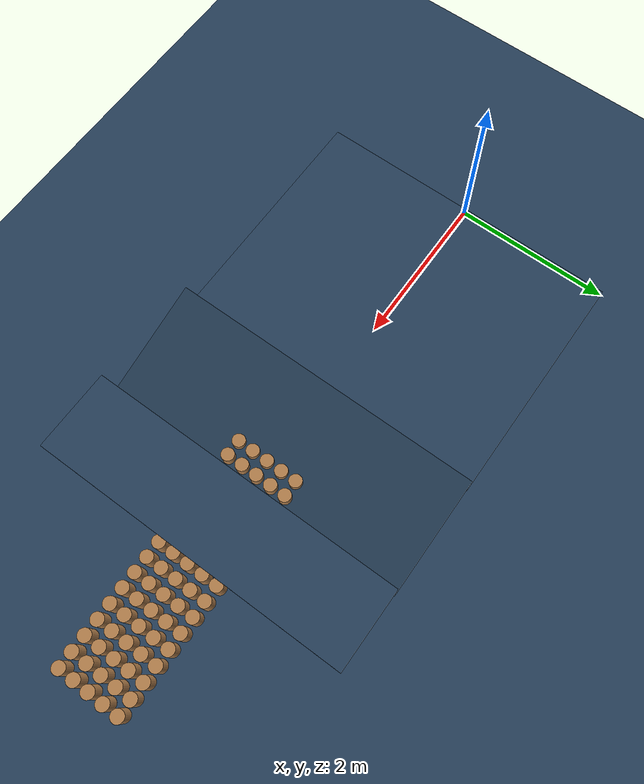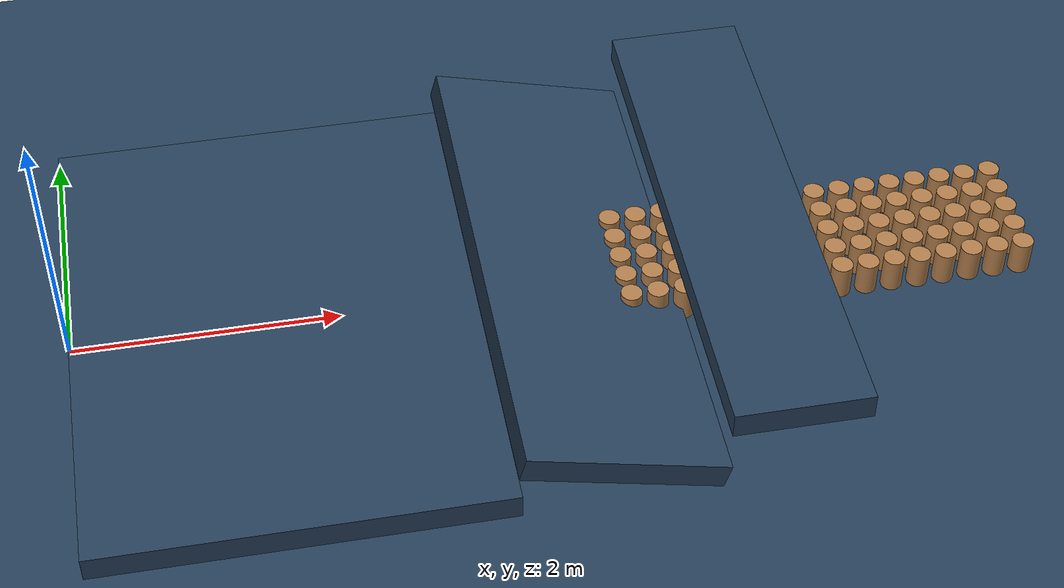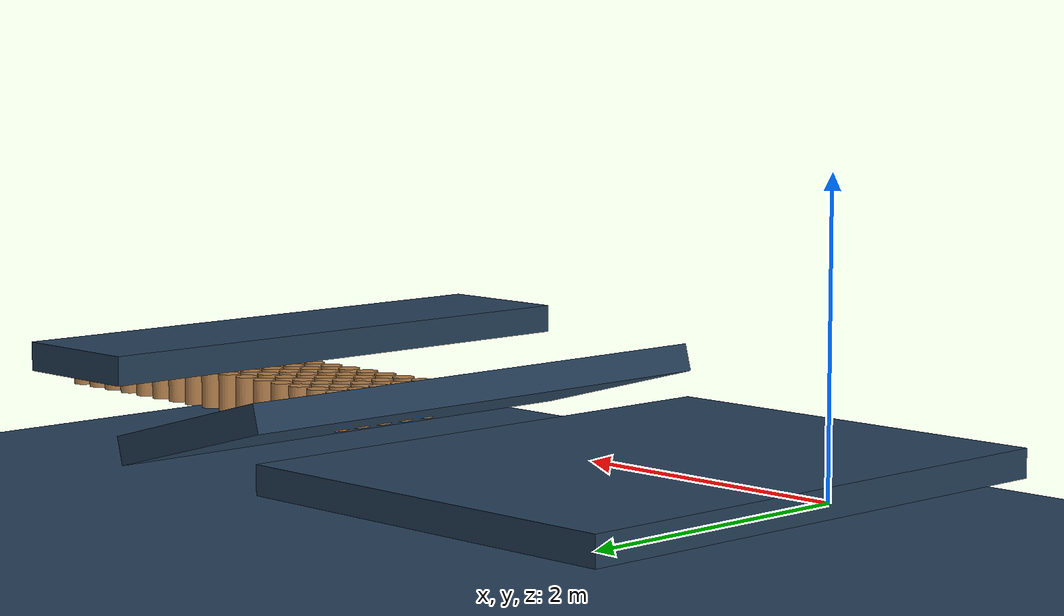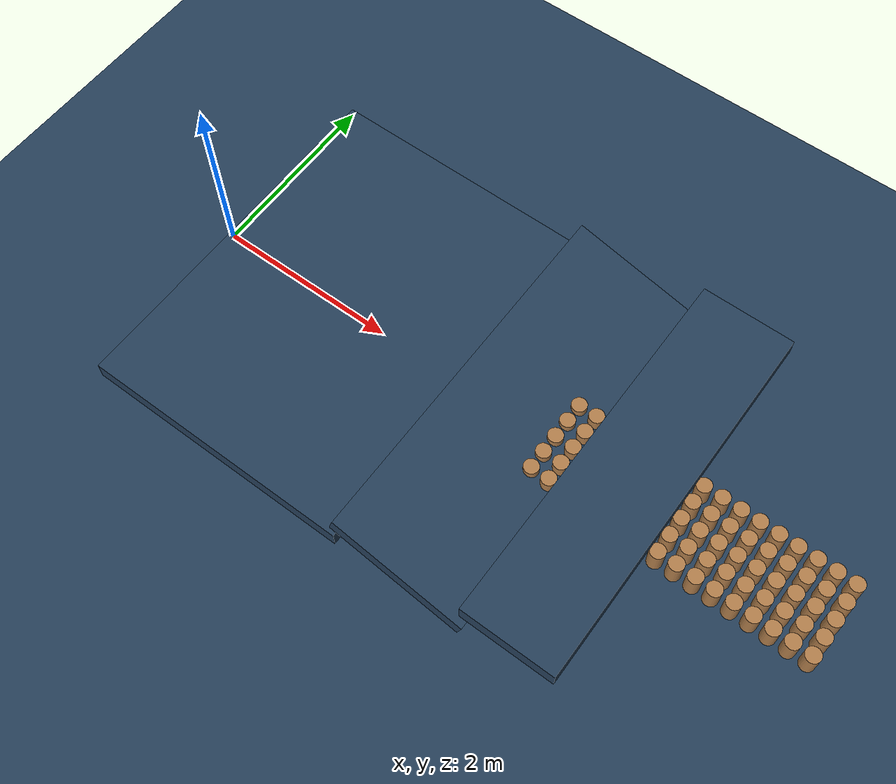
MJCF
<mujoco model="plum_piles_terrain">
  <asset>
    <texture name="grid" type="2d" builtin="checker" width="512" height="512" rgb1=".1 .2 .3" rgb2=".2 .3 .4"/>
    <material name="grid" texture="grid" texrepeat="1 1" texuniform="true" reflectance=".2"/>
    <material name="pile" rgba=".7 .5 .3 1"/>
  </asset>

  <worldbody>
    <light pos="0 0 3" dir="0 0 -1" directional="true"/>

    <!-- Flat starting area (robot spawn point) -->
    <geom name="flat_start" type="box" pos="1.5 0 0" size="1.5 2.0 0.1" material="grid" friction="1.0 0.005 0.0001"/>

    <!-- Ramp to platform -->
    <geom name="ramp_up" type="box" pos="3.7244443697168013 0 0.19411428382689055" size="0.75 2.0 0.1" euler="0 15.0 0" material="grid" friction="1.0 0.005 0.0001"/>

    <!-- Platform section -->
    <geom name="platform" type="box" pos="4.9488887394336025 0 0.536" size="0.5 2.0 0.1" material="grid" friction="1.0 0.005 0.0001"/>

    <!-- Plum piles (dense stepping stones grid) -->
    <geom name="pile_0" type="cylinder" pos="4.1 -0.4 0.134" size="0.08 0.134" material="pile" friction="1.0 0.005 0.0001"/>
    <geom name="pile_1" type="cylinder" pos="4.1 -0.2 0.134" size="0.08 0.134" material="pile" friction="1.0 0.005 0.0001"/>
    <geom name="pile_2" type="cylinder" pos="4.1 0.0 0.134" size="0.08 0.134" material="pile" friction="1.0 0.005 0.0001"/>
    <geom name="pile_3" type="cylinder" pos="4.1 0.2 0.134" size="0.08 0.134" material="pile" friction="1.0 0.005 0.0001"/>
    <geom name="pile_4" type="cylinder" pos="4.1 0.4 0.134" size="0.08 0.134" material="pile" friction="1.0 0.005 0.0001"/>
    <geom name="pile_5" type="cylinder" pos="4.3 -0.4 0.134" size="0.08 0.134" material="pile" friction="1.0 0.005 0.0001"/>
    <geom name="pile_6" type="cylinder" pos="4.3 -0.2 0.134" size="0.08 0.134" material="pile" friction="1.0 0.005 0.0001"/>
    <geom name="pile_7" type="cylinder" pos="4.3 0.0 0.134" size="0.08 0.134" material="pile" friction="1.0 0.005 0.0001"/>
    <geom name="pile_8" type="cylinder" pos="4.3 0.2 0.134" size="0.08 0.134" material="pile" friction="1.0 0.005 0.0001"/>
    <geom name="pile_9" type="cylinder" pos="4.3 0.4 0.134" size="0.08 0.134" material="pile" friction="1.0 0.005 0.0001"/>
    <geom name="pile_10" type="cylinder" pos="4.5 -0.4 0.134" size="0.08 0.134" material="pile" friction="1.0 0.005 0.0001"/>
    <geom name="pile_11" type="cylinder" pos="4.5 -0.2 0.134" size="0.08 0.134" material="pile" friction="1.0 0.005 0.0001"/>
    <geom name="pile_12" type="cylinder" pos="4.5 0.0 0.134" size="0.08 0.134" material="pile" friction="1.0 0.005 0.0001"/>
    <geom name="pile_13" type="cylinder" pos="4.5 0.2 0.134" size="0.08 0.134" material="pile" friction="1.0 0.005 0.0001"/>
    <geom name="pile_14" type="cylinder" pos="4.5 0.4 0.134" size="0.08 0.134" material="pile" friction="1.0 0.005 0.0001"/>
    <geom name="pile_15" type="cylinder" pos="4.7 -0.4 0.134" size="0.08 0.134" material="pile" friction="1.0 0.005 0.0001"/>
    <geom name="pile_16" type="cylinder" pos="4.7 -0.2 0.134" size="0.08 0.134" material="pile" friction="1.0 0.005 0.0001"/>
    <geom name="pile_17" type="cylinder" pos="4.7 0.0 0.134" size="0.08 0.134" material="pile" friction="1.0 0.005 0.0001"/>
    <geom name="pile_18" type="cylinder" pos="4.7 0.2 0.134" size="0.08 0.134" material="pile" friction="1.0 0.005 0.0001"/>
    <geom name="pile_19" type="cylinder" pos="4.7 0.4 0.134" size="0.08 0.134" material="pile" friction="1.0 0.005 0.0001"/>
    <geom name="pile_20" type="cylinder" pos="4.9 -0.4 0.134" size="0.08 0.134" material="pile" friction="1.0 0.005 0.0001"/>
    <geom name="pile_21" type="cylinder" pos="4.9 -0.2 0.134" size="0.08 0.134" material="pile" friction="1.0 0.005 0.0001"/>
    <geom name="pile_22" type="cylinder" pos="4.9 0.0 0.134" size="0.08 0.134" material="pile" friction="1.0 0.005 0.0001"/>
    <geom name="pile_23" type="cylinder" pos="4.9 0.2 0.134" size="0.08 0.134" material="pile" friction="1.0 0.005 0.0001"/>
    <geom name="pile_24" type="cylinder" pos="4.9 0.4 0.134" size="0.08 0.134" material="pile" friction="1.0 0.005 0.0001"/>
    <geom name="pile_25" type="cylinder" pos="5.1 -0.4 0.134" size="0.08 0.134" material="pile" friction="1.0 0.005 0.0001"/>
    <geom name="pile_26" type="cylinder" pos="5.1 -0.2 0.134" size="0.08 0.134" material="pile" friction="1.0 0.005 0.0001"/>
    <geom name="pile_27" type="cylinder" pos="5.1 0.0 0.134" size="0.08 0.134" material="pile" friction="1.0 0.005 0.0001"/>
    <geom name="pile_28" type="cylinder" pos="5.1 0.2 0.134" size="0.08 0.134" material="pile" friction="1.0 0.005 0.0001"/>
    <geom name="pile_29" type="cylinder" pos="5.1 0.4 0.134" size="0.08 0.134" material="pile" friction="1.0 0.005 0.0001"/>
    <geom name="pile_30" type="cylinder" pos="5.3 -0.4 0.134" size="0.08 0.134" material="pile" friction="1.0 0.005 0.0001"/>
    <geom name="pile_31" type="cylinder" pos="5.3 -0.2 0.134" size="0.08 0.134" material="pile" friction="1.0 0.005 0.0001"/>
    <geom name="pile_32" type="cylinder" pos="5.3 0.0 0.134" size="0.08 0.134" material="pile" friction="1.0 0.005 0.0001"/>
    <geom name="pile_33" type="cylinder" pos="5.3 0.2 0.134" size="0.08 0.134" material="pile" friction="1.0 0.005 0.0001"/>
    <geom name="pile_34" type="cylinder" pos="5.3 0.4 0.134" size="0.08 0.134" material="pile" friction="1.0 0.005 0.0001"/>
    <geom name="pile_35" type="cylinder" pos="5.5 -0.4 0.134" size="0.08 0.134" material="pile" friction="1.0 0.005 0.0001"/>
    <geom name="pile_36" type="cylinder" pos="5.5 -0.2 0.134" size="0.08 0.134" material="pile" friction="1.0 0.005 0.0001"/>
    <geom name="pile_37" type="cylinder" pos="5.5 0.0 0.134" size="0.08 0.134" material="pile" friction="1.0 0.005 0.0001"/>
    <geom name="pile_38" type="cylinder" pos="5.5 0.2 0.134" size="0.08 0.134" material="pile" friction="1.0 0.005 0.0001"/>
    <geom name="pile_39" type="cylinder" pos="5.5 0.4 0.134" size="0.08 0.134" material="pile" friction="1.0 0.005 0.0001"/>
    <geom name="pile_40" type="cylinder" pos="5.7 -0.4 0.134" size="0.08 0.134" material="pile" friction="1.0 0.005 0.0001"/>
    <geom name="pile_41" type="cylinder" pos="5.7 -0.2 0.134" size="0.08 0.134" material="pile" friction="1.0 0.005 0.0001"/>
    <geom name="pile_42" type="cylinder" pos="5.7 0.0 0.134" size="0.08 0.134" material="pile" friction="1.0 0.005 0.0001"/>
    <geom name="pile_43" type="cylinder" pos="5.7 0.2 0.134" size="0.08 0.134" material="pile" friction="1.0 0.005 0.0001"/>
    <geom name="pile_44" type="cylinder" pos="5.7 0.4 0.134" size="0.08 0.134" material="pile" friction="1.0 0.005 0.0001"/>
    <geom name="pile_45" type="cylinder" pos="5.9 -0.4 0.134" size="0.08 0.134" material="pile" friction="1.0 0.005 0.0001"/>
    <geom name="pile_46" type="cylinder" pos="5.9 -0.2 0.134" size="0.08 0.134" material="pile" friction="1.0 0.005 0.0001"/>
    <geom name="pile_47" type="cylinder" pos="5.9 0.0 0.134" size="0.08 0.134" material="pile" friction="1.0 0.005 0.0001"/>
    <geom name="pile_48" type="cylinder" pos="5.9 0.2 0.134" size="0.08 0.134" material="pile" friction="1.0 0.005 0.0001"/>
    <geom name="pile_49" type="cylinder" pos="5.9 0.4 0.134" size="0.08 0.134" material="pile" friction="1.0 0.005 0.0001"/>
    <geom name="pile_50" type="cylinder" pos="6.1 -0.4 0.134" size="0.08 0.134" material="pile" friction="1.0 0.005 0.0001"/>
    <geom name="pile_51" type="cylinder" pos="6.1 -0.2 0.134" size="0.08 0.134" material="pile" friction="1.0 0.005 0.0001"/>
    <geom name="pile_52" type="cylinder" pos="6.1 0.0 0.134" size="0.08 0.134" material="pile" friction="1.0 0.005 0.0001"/>
    <geom name="pile_53" type="cylinder" pos="6.1 0.2 0.134" size="0.08 0.134" material="pile" friction="1.0 0.005 0.0001"/>
    <geom name="pile_54" type="cylinder" pos="6.1 0.4 0.134" size="0.08 0.134" material="pile" friction="1.0 0.005 0.0001"/>
    <geom name="pile_55" type="cylinder" pos="6.3 -0.4 0.134" size="0.08 0.134" material="pile" friction="1.0 0.005 0.0001"/>
    <geom name="pile_56" type="cylinder" pos="6.3 -0.2 0.134" size="0.08 0.134" material="pile" friction="1.0 0.005 0.0001"/>
    <geom name="pile_57" type="cylinder" pos="6.3 0.0 0.134" size="0.08 0.134" material="pile" friction="1.0 0.005 0.0001"/>
    <geom name="pile_58" type="cylinder" pos="6.3 0.2 0.134" size="0.08 0.134" material="pile" friction="1.0 0.005 0.0001"/>
    <geom name="pile_59" type="cylinder" pos="6.3 0.4 0.134" size="0.08 0.134" material="pile" friction="1.0 0.005 0.0001"/>
    <geom name="pile_60" type="cylinder" pos="6.5 -0.4 0.134" size="0.08 0.134" material="pile" friction="1.0 0.005 0.0001"/>
    <geom name="pile_61" type="cylinder" pos="6.5 -0.2 0.134" size="0.08 0.134" material="pile" friction="1.0 0.005 0.0001"/>
    <geom name="pile_62" type="cylinder" pos="6.5 0.0 0.134" size="0.08 0.134" material="pile" friction="1.0 0.005 0.0001"/>
    <geom name="pile_63" type="cylinder" pos="6.5 0.2 0.134" size="0.08 0.134" material="pile" friction="1.0 0.005 0.0001"/>
    <geom name="pile_64" type="cylinder" pos="6.5 0.4 0.134" size="0.08 0.134" material="pile" friction="1.0 0.005 0.0001"/>
    <geom name="pile_65" type="cylinder" pos="6.7 -0.4 0.134" size="0.08 0.134" material="pile" friction="1.0 0.005 0.0001"/>
    <geom name="pile_66" type="cylinder" pos="6.7 -0.2 0.134" size="0.08 0.134" material="pile" friction="1.0 0.005 0.0001"/>
    <geom name="pile_67" type="cylinder" pos="6.7 0.0 0.134" size="0.08 0.134" material="pile" friction="1.0 0.005 0.0001"/>
    <geom name="pile_68" type="cylinder" pos="6.7 0.2 0.134" size="0.08 0.134" material="pile" friction="1.0 0.005 0.0001"/>
    <geom name="pile_69" type="cylinder" pos="6.7 0.4 0.134" size="0.08 0.134" material="pile" friction="1.0 0.005 0.0001"/>
    <geom name="pile_70" type="cylinder" pos="6.9 -0.4 0.134" size="0.08 0.134" material="pile" friction="1.0 0.005 0.0001"/>
    <geom name="pile_71" type="cylinder" pos="6.9 -0.2 0.134" size="0.08 0.134" material="pile" friction="1.0 0.005 0.0001"/>
    <geom name="pile_72" type="cylinder" pos="6.9 0.0 0.134" size="0.08 0.134" material="pile" friction="1.0 0.005 0.0001"/>
    <geom name="pile_73" type="cylinder" pos="6.9 0.2 0.134" size="0.08 0.134" material="pile" friction="1.0 0.005 0.0001"/>
    <geom name="pile_74" type="cylinder" pos="6.9 0.4 0.134" size="0.08 0.134" material="pile" friction="1.0 0.005 0.0001"/>
    <geom name="pile_75" type="cylinder" pos="7.1 -0.4 0.134" size="0.08 0.134" material="pile" friction="1.0 0.005 0.0001"/>
    <geom name="pile_76" type="cylinder" pos="7.1 -0.2 0.134" size="0.08 0.134" material="pile" friction="1.0 0.005 0.0001"/>
    <geom name="pile_77" type="cylinder" pos="7.1 0.0 0.134" size="0.08 0.134" material="pile" friction="1.0 0.005 0.0001"/>
    <geom name="pile_78" type="cylinder" pos="7.1 0.2 0.134" size="0.08 0.134" material="pile" friction="1.0 0.005 0.0001"/>
    <geom name="pile_79" type="cylinder" pos="7.1 0.4 0.134" size="0.08 0.134" material="pile" friction="1.0 0.005 0.0001"/>
    <!-- Total plum piles: 80 -->

    <!-- Safety ground plane -->
    <geom name="ground" type="plane" pos="0 0 -1.0" size="50 50 0.1" material="grid" friction="1.0 0.005 0.0001"/>

  </worldbody>
</mujoco>
